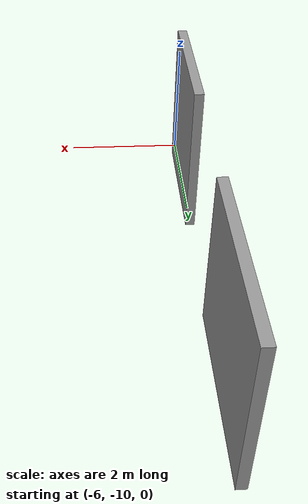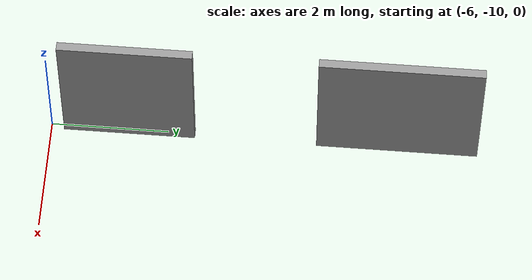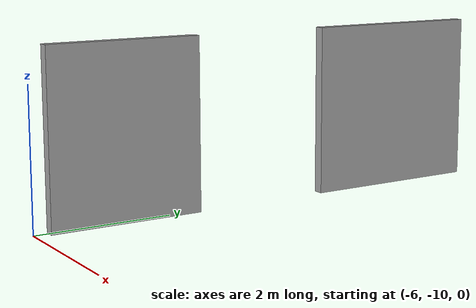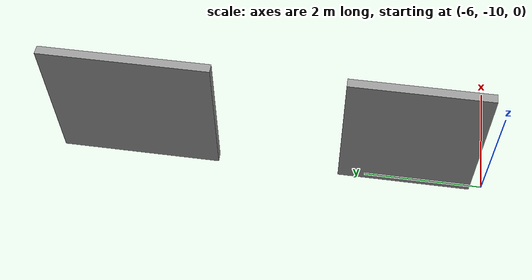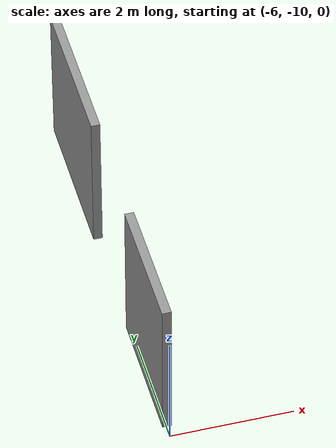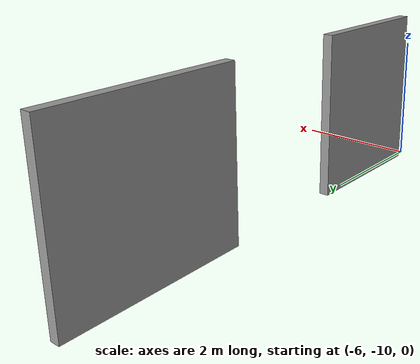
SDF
<?xml version='1.0'?>
<sdf version='1.6'>
  <model name='house_3_help'>
    <pose frame=''>-5.995 -6.24 0 0 -0 0</pose>
    <link name='Wall_0'>
      <collision name='Wall_0_Collision'>
        <geometry>
          <box>
            <size>2.75 0.15 2.5</size>
          </box>
        </geometry>
        <pose frame=''>0 0 1.25 0 -0 0</pose>
      </collision>
      <visual name='Wall_0_Visual'>
        <pose frame=''>0 0 1.25 0 -0 0</pose>
        <geometry>
          <box>
            <size>2.75 0.15 2.5</size>
          </box>
        </geometry>
        <material>
          <script>
            <uri>file://media/materials/scripts/gazebo.material</uri>
            <name>Gazebo/Grey</name>
          </script>
          <ambient>1 1 1 1</ambient>
        </material>
        <meta>
          <layer>0</layer>
        </meta>
      </visual>
      <pose frame=''>-0.005 2.17 0 0 -0 1.5708</pose>
    </link>
    <link name='Wall_7'>
      <collision name='Wall_7_Collision'>
        <geometry>
          <box>
            <size>2.25 0.15 2.5</size>
          </box>
        </geometry>
        <pose frame=''>0 0 1.25 0 -0 0</pose>
      </collision>
      <visual name='Wall_7_Visual'>
        <pose frame=''>0 0 1.25 0 -0 0</pose>
        <geometry>
          <box>
            <size>2.25 0.15 2.5</size>
          </box>
        </geometry>
        <material>
          <script>
            <uri>file://media/materials/scripts/gazebo.material</uri>
            <name>Gazebo/Grey</name>
          </script>
          <ambient>1 1 1 1</ambient>
        </material>
        <meta>
          <layer>0</layer>
        </meta>
      </visual>
      <pose frame=''>0.005 -2.42 0 0 -0 -1.5708</pose>
    </link>
    <static>1</static>
  </model>
</sdf>
